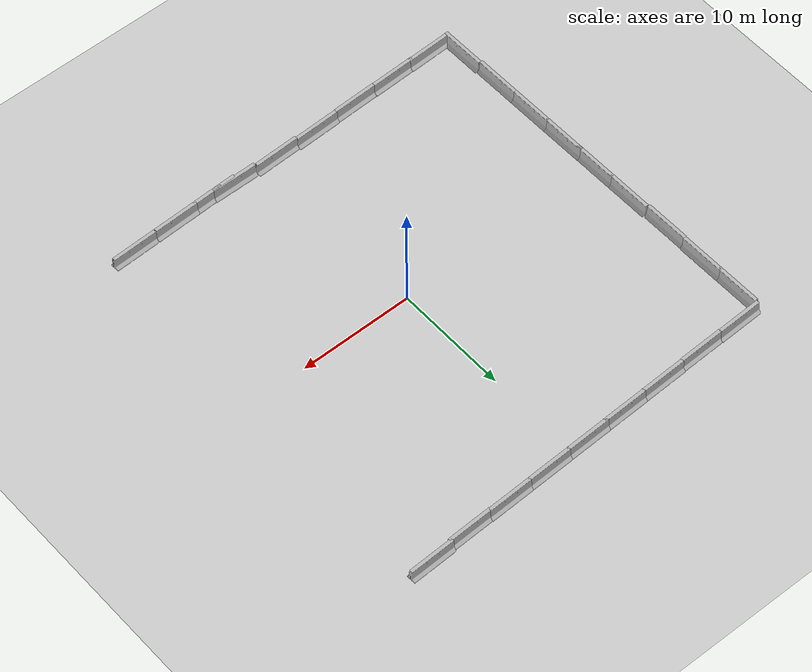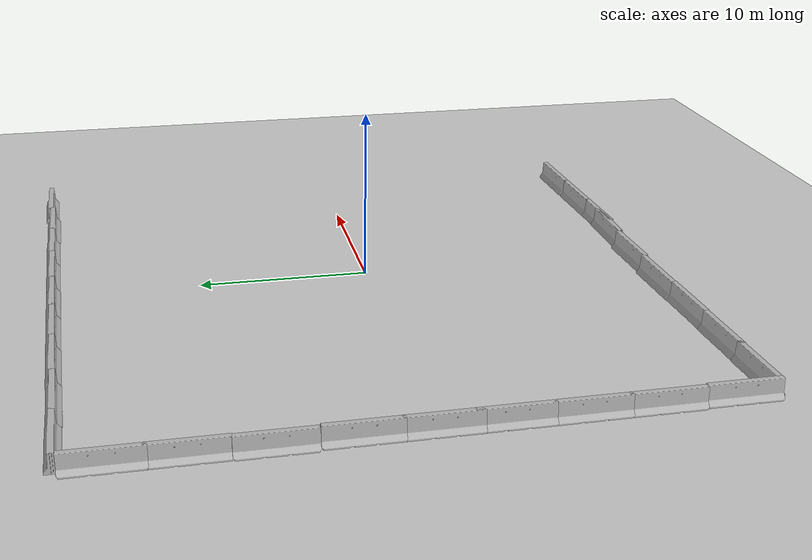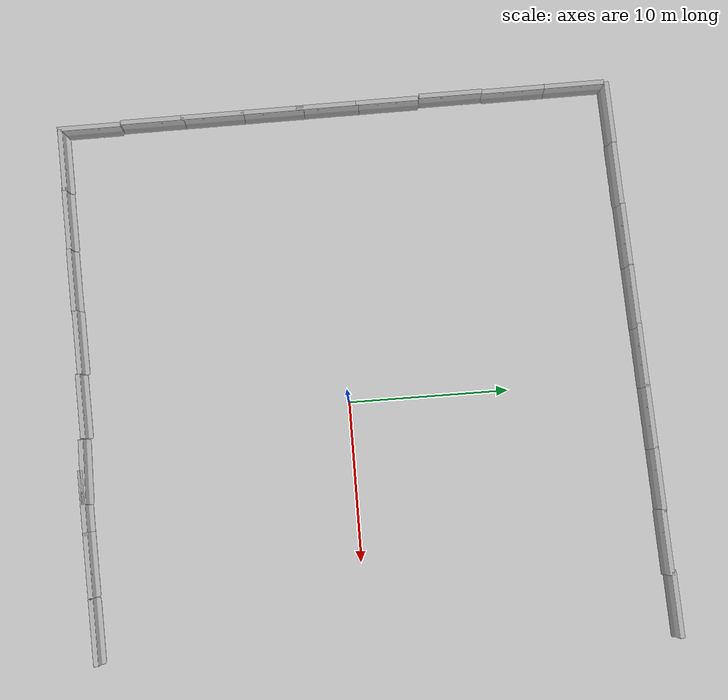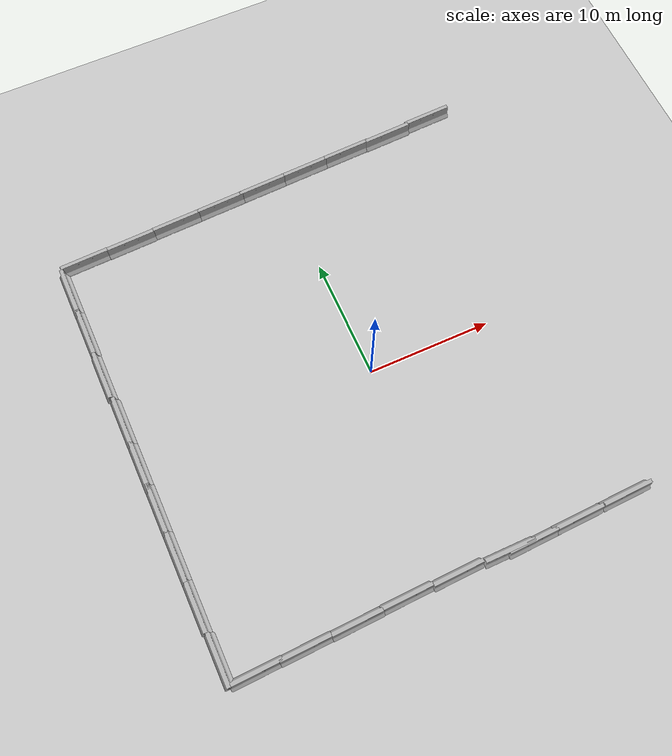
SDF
<sdf version="1.6">
 <world name="default">
  <model name="ground_plane">
   <static>1</static>
   <link name="link">
    <collision name="collision">
     <geometry><plane><normal>0 0 1</normal><size>100 100</size></plane></geometry>
     <surface><friction><ode><mu>100</mu><mu2>50</mu2></ode></friction></surface>
    </collision>
    <visual name="visual">
     <cast_shadows>0</cast_shadows>
     <geometry><plane><normal>0 0 1</normal><size>100 100</size></plane></geometry>
     <material>
      <script><uri>file://media/materials/scripts/gazebo.material</uri><name>Gazebo/Grey</name></script>
     </material>
    </visual>
   </link>
  </model>
  <model name="jersey_barrier">
   <static>1</static>
   <link name="link">
    <visual name="visual">
     <geometry>
      <mesh><uri>model://jersey_barrier/meshes/jersey_barrier.dae</uri><scale>1 1 1</scale></mesh>
     </geometry>
    </visual>
    <collision name="upright">
     <pose>0 0 0.5715 0 -0 0</pose>
     <geometry><box><size>4.06542 0.3063 1.143</size></box></geometry>
    </collision>
    <collision name="base">
     <pose>0 0 0.032258 0 -0 0</pose>
     <geometry><box><size>4.06542 0.8107 0.064516</size></box></geometry>
    </collision>
    <collision name="base2">
     <pose>0 0 0.1 0 -0 0</pose>
     <geometry><box><size>4.06542 0.65 0.1</size></box></geometry>
    </collision>
    <collision name="base3">
     <pose>0 0 0.2 0 -0 0</pose>
     <geometry><box><size>4.06542 0.5 0.1</size></box></geometry>
    </collision>
    <collision name="left-angle">
     <pose>0 -0.224 0.2401 0.9 -0 0</pose>
     <geometry><box><size>4.06542 0.5 0.064516</size></box></geometry>
    </collision>
    <collision name="right-angle">
     <pose>0 0.224 0.2401 -0.9 0 0</pose>
     <geometry><box><size>4.06542 0.5 0.064516</size></box></geometry>
    </collision>
   </link>
   <pose>-0.913416 -16.6952 0 0 -0 0.033275</pose>
  </model>
  <model name="jersey_barrier_clone">
   <static>1</static>
   <link name="link">
    <visual name="visual">
     <geometry>
      <mesh><uri>model://jersey_barrier/meshes/jersey_barrier.dae</uri><scale>1 1 1</scale></mesh>
     </geometry>
    </visual>
    <collision name="upright">
     <pose>0 0 0.5715 0 -0 0</pose>
     <geometry><box><size>4.06542 0.3063 1.143</size></box></geometry>
    </collision>
    <collision name="base">
     <pose>0 0 0.032258 0 -0 0</pose>
     <geometry><box><size>4.06542 0.8107 0.064516</size></box></geometry>
    </collision>
    <collision name="base2">
     <pose>0 0 0.1 0 -0 0</pose>
     <geometry><box><size>4.06542 0.65 0.1</size></box></geometry>
    </collision>
    <collision name="base3">
     <pose>0 0 0.2 0 -0 0</pose>
     <geometry><box><size>4.06542 0.5 0.1</size></box></geometry>
    </collision>
    <collision name="left-angle">
     <pose>0 -0.224 0.2401 0.9 -0 0</pose>
     <geometry><box><size>4.06542 0.5 0.064516</size></box></geometry>
    </collision>
    <collision name="right-angle">
     <pose>0 0.224 0.2401 -0.9 0 0</pose>
     <geometry><box><size>4.06542 0.5 0.064516</size></box></geometry>
    </collision>
   </link>
   <pose>5.06368 -16.8524 0 0 -0 0.033275</pose>
  </model>
  <model name="jersey_barrier_clone_clone">
   <static>1</static>
   <link name="link">
    <visual name="visual">
     <geometry>
      <mesh><uri>model://jersey_barrier/meshes/jersey_barrier.dae</uri><scale>1 1 1</scale></mesh>
     </geometry>
    </visual>
    <collision name="upright">
     <pose>0 0 0.5715 0 -0 0</pose>
     <geometry><box><size>4.06542 0.3063 1.143</size></box></geometry>
    </collision>
    <collision name="base">
     <pose>0 0 0.032258 0 -0 0</pose>
     <geometry><box><size>4.06542 0.8107 0.064516</size></box></geometry>
    </collision>
    <collision name="base2">
     <pose>0 0 0.1 0 -0 0</pose>
     <geometry><box><size>4.06542 0.65 0.1</size></box></geometry>
    </collision>
    <collision name="base3">
     <pose>0 0 0.2 0 -0 0</pose>
     <geometry><box><size>4.06542 0.5 0.1</size></box></geometry>
    </collision>
    <collision name="left-angle">
     <pose>0 -0.224 0.2401 0.9 -0 0</pose>
     <geometry><box><size>4.06542 0.5 0.064516</size></box></geometry>
    </collision>
    <collision name="right-angle">
     <pose>0 0.224 0.2401 -0.9 0 0</pose>
     <geometry><box><size>4.06542 0.5 0.064516</size></box></geometry>
    </collision>
   </link>
   <pose>-4.93978 -16.7019 0 0 -0 0.033275</pose>
  </model>
  <model name="jersey_barrier_clone_clone_0">
   <static>1</static>
   <link name="link">
    <visual name="visual">
     <geometry>
      <mesh><uri>model://jersey_barrier/meshes/jersey_barrier.dae</uri><scale>1 1 1</scale></mesh>
     </geometry>
    </visual>
    <collision name="upright">
     <pose>0 0 0.5715 0 -0 0</pose>
     <geometry><box><size>4.06542 0.3063 1.143</size></box></geometry>
    </collision>
    <collision name="base">
     <pose>0 0 0.032258 0 -0 0</pose>
     <geometry><box><size>4.06542 0.8107 0.064516</size></box></geometry>
    </collision>
    <collision name="base2">
     <pose>0 0 0.1 0 -0 0</pose>
     <geometry><box><size>4.06542 0.65 0.1</size></box></geometry>
    </collision>
    <collision name="base3">
     <pose>0 0 0.2 0 -0 0</pose>
     <geometry><box><size>4.06542 0.5 0.1</size></box></geometry>
    </collision>
    <collision name="left-angle">
     <pose>0 -0.224 0.2401 0.9 -0 0</pose>
     <geometry><box><size>4.06542 0.5 0.064516</size></box></geometry>
    </collision>
    <collision name="right-angle">
     <pose>0 0.224 0.2401 -0.9 0 0</pose>
     <geometry><box><size>4.06542 0.5 0.064516</size></box></geometry>
    </collision>
   </link>
   <pose>8.87687 -16.7227 0 0 -0 0.033275</pose>
  </model>
  <model name="jersey_barrier_clone_clone_1">
   <static>1</static>
   <link name="link">
    <visual name="visual">
     <geometry>
      <mesh><uri>model://jersey_barrier/meshes/jersey_barrier.dae</uri><scale>1 1 1</scale></mesh>
     </geometry>
    </visual>
    <collision name="upright">
     <pose>0 0 0.5715 0 -0 0</pose>
     <geometry><box><size>4.06542 0.3063 1.143</size></box></geometry>
    </collision>
    <collision name="base">
     <pose>0 0 0.032258 0 -0 0</pose>
     <geometry><box><size>4.06542 0.8107 0.064516</size></box></geometry>
    </collision>
    <collision name="base2">
     <pose>0 0 0.1 0 -0 0</pose>
     <geometry><box><size>4.06542 0.65 0.1</size></box></geometry>
    </collision>
    <collision name="base3">
     <pose>0 0 0.2 0 -0 0</pose>
     <geometry><box><size>4.06542 0.5 0.1</size></box></geometry>
    </collision>
    <collision name="left-angle">
     <pose>0 -0.224 0.2401 0.9 -0 0</pose>
     <geometry><box><size>4.06542 0.5 0.064516</size></box></geometry>
    </collision>
    <collision name="right-angle">
     <pose>0 0.224 0.2401 -0.9 0 0</pose>
     <geometry><box><size>4.06542 0.5 0.064516</size></box></geometry>
    </collision>
   </link>
   <pose>12.9707 -16.5908 0 0 -0 0.033275</pose>
  </model>
  <model name="jersey_barrier_clone_clone_clone_0">
   <static>1</static>
   <link name="link">
    <visual name="visual">
     <geometry>
      <mesh><uri>model://jersey_barrier/meshes/jersey_barrier.dae</uri><scale>1 1 1</scale></mesh>
     </geometry>
    </visual>
    <collision name="upright">
     <pose>0 0 0.5715 0 -0 0</pose>
     <geometry><box><size>4.06542 0.3063 1.143</size></box></geometry>
    </collision>
    <collision name="base">
     <pose>0 0 0.032258 0 -0 0</pose>
     <geometry><box><size>4.06542 0.8107 0.064516</size></box></geometry>
    </collision>
    <collision name="base2">
     <pose>0 0 0.1 0 -0 0</pose>
     <geometry><box><size>4.06542 0.65 0.1</size></box></geometry>
    </collision>
    <collision name="base3">
     <pose>0 0 0.2 0 -0 0</pose>
     <geometry><box><size>4.06542 0.5 0.1</size></box></geometry>
    </collision>
    <collision name="left-angle">
     <pose>0 -0.224 0.2401 0.9 -0 0</pose>
     <geometry><box><size>4.06542 0.5 0.064516</size></box></geometry>
    </collision>
    <collision name="right-angle">
     <pose>0 0.224 0.2401 -0.9 0 0</pose>
     <geometry><box><size>4.06542 0.5 0.064516</size></box></geometry>
    </collision>
   </link>
   <pose>-8.88852 -16.868 0 0 -0 0.033275</pose>
  </model>
  <model name="jersey_barrier_clone_clone_clone_2">
   <static>1</static>
   <link name="link">
    <visual name="visual">
     <geometry>
      <mesh><uri>model://jersey_barrier/meshes/jersey_barrier.dae</uri><scale>1 1 1</scale></mesh>
     </geometry>
    </visual>
    <collision name="upright">
     <pose>0 0 0.5715 0 -0 0</pose>
     <geometry><box><size>4.06542 0.3063 1.143</size></box></geometry>
    </collision>
    <collision name="base">
     <pose>0 0 0.032258 0 -0 0</pose>
     <geometry><box><size>4.06542 0.8107 0.064516</size></box></geometry>
    </collision>
    <collision name="base2">
     <pose>0 0 0.1 0 -0 0</pose>
     <geometry><box><size>4.06542 0.65 0.1</size></box></geometry>
    </collision>
    <collision name="base3">
     <pose>0 0 0.2 0 -0 0</pose>
     <geometry><box><size>4.06542 0.5 0.1</size></box></geometry>
    </collision>
    <collision name="left-angle">
     <pose>0 -0.224 0.2401 0.9 -0 0</pose>
     <geometry><box><size>4.06542 0.5 0.064516</size></box></geometry>
    </collision>
    <collision name="right-angle">
     <pose>0 0.224 0.2401 -0.9 0 0</pose>
     <geometry><box><size>4.06542 0.5 0.064516</size></box></geometry>
    </collision>
   </link>
   <pose>-12.8673 -16.9656 0 0 -0 0.033275</pose>
  </model>
  <model name="jersey_barrier_clone_clone_clone_clone_0_clone_0_clone">
   <static>1</static>
   <link name="link">
    <visual name="visual">
     <geometry>
      <mesh><uri>model://jersey_barrier/meshes/jersey_barrier.dae</uri><scale>1 1 1</scale></mesh>
     </geometry>
    </visual>
    <collision name="upright">
     <pose>0 0 0.5715 0 -0 0</pose>
     <geometry><box><size>4.06542 0.3063 1.143</size></box></geometry>
    </collision>
    <collision name="base">
     <pose>0 0 0.032258 0 -0 0</pose>
     <geometry><box><size>4.06542 0.8107 0.064516</size></box></geometry>
    </collision>
    <collision name="base2">
     <pose>0 0 0.1 0 -0 0</pose>
     <geometry><box><size>4.06542 0.65 0.1</size></box></geometry>
    </collision>
    <collision name="base3">
     <pose>0 0 0.2 0 -0 0</pose>
     <geometry><box><size>4.06542 0.5 0.1</size></box></geometry>
    </collision>
    <collision name="left-angle">
     <pose>0 -0.224 0.2401 0.9 -0 0</pose>
     <geometry><box><size>4.06542 0.5 0.064516</size></box></geometry>
    </collision>
    <collision name="right-angle">
     <pose>0 0.224 0.2401 -0.9 0 0</pose>
     <geometry><box><size>4.06542 0.5 0.064516</size></box></geometry>
    </collision>
   </link>
   <pose>13.949 19.1026 0 0 -0 0.033275</pose>
  </model>
  <model name="jersey_barrier_clone_clone_clone_clone_0_clone_0_clone_clone">
   <static>1</static>
   <link name="link">
    <visual name="visual">
     <geometry>
      <mesh><uri>model://jersey_barrier/meshes/jersey_barrier.dae</uri><scale>1 1 1</scale></mesh>
     </geometry>
    </visual>
    <collision name="upright">
     <pose>0 0 0.5715 0 -0 0</pose>
     <geometry><box><size>4.06542 0.3063 1.143</size></box></geometry>
    </collision>
    <collision name="base">
     <pose>0 0 0.032258 0 -0 0</pose>
     <geometry><box><size>4.06542 0.8107 0.064516</size></box></geometry>
    </collision>
    <collision name="base2">
     <pose>0 0 0.1 0 -0 0</pose>
     <geometry><box><size>4.06542 0.65 0.1</size></box></geometry>
    </collision>
    <collision name="base3">
     <pose>0 0 0.2 0 -0 0</pose>
     <geometry><box><size>4.06542 0.5 0.1</size></box></geometry>
    </collision>
    <collision name="left-angle">
     <pose>0 -0.224 0.2401 0.9 -0 0</pose>
     <geometry><box><size>4.06542 0.5 0.064516</size></box></geometry>
    </collision>
    <collision name="right-angle">
     <pose>0 0.224 0.2401 -0.9 0 0</pose>
     <geometry><box><size>4.06542 0.5 0.064516</size></box></geometry>
    </collision>
   </link>
   <pose>10.1358 18.8674 0 0 -0 0.033275</pose>
  </model>
  <model name="jersey_barrier_clone_clone_clone_clone_0_clone_0_clone_clone_0">
   <static>1</static>
   <link name="link">
    <visual name="visual">
     <geometry>
      <mesh><uri>model://jersey_barrier/meshes/jersey_barrier.dae</uri><scale>1 1 1</scale></mesh>
     </geometry>
    </visual>
    <collision name="upright">
     <pose>0 0 0.5715 0 -0 0</pose>
     <geometry><box><size>4.06542 0.3063 1.143</size></box></geometry>
    </collision>
    <collision name="base">
     <pose>0 0 0.032258 0 -0 0</pose>
     <geometry><box><size>4.06542 0.8107 0.064516</size></box></geometry>
    </collision>
    <collision name="base2">
     <pose>0 0 0.1 0 -0 0</pose>
     <geometry><box><size>4.06542 0.65 0.1</size></box></geometry>
    </collision>
    <collision name="base3">
     <pose>0 0 0.2 0 -0 0</pose>
     <geometry><box><size>4.06542 0.5 0.1</size></box></geometry>
    </collision>
    <collision name="left-angle">
     <pose>0 -0.224 0.2401 0.9 -0 0</pose>
     <geometry><box><size>4.06542 0.5 0.064516</size></box></geometry>
    </collision>
    <collision name="right-angle">
     <pose>0 0.224 0.2401 -0.9 0 0</pose>
     <geometry><box><size>4.06542 0.5 0.064516</size></box></geometry>
    </collision>
   </link>
   <pose>6.27406 18.7774 0 0 -0 0.033275</pose>
  </model>
  <model name="jersey_barrier_clone_clone_clone_clone_0_clone_0_clone_clone_1">
   <static>1</static>
   <link name="link">
    <visual name="visual">
     <geometry>
      <mesh><uri>model://jersey_barrier/meshes/jersey_barrier.dae</uri><scale>1 1 1</scale></mesh>
     </geometry>
    </visual>
    <collision name="upright">
     <pose>0 0 0.5715 0 -0 0</pose>
     <geometry><box><size>4.06542 0.3063 1.143</size></box></geometry>
    </collision>
    <collision name="base">
     <pose>0 0 0.032258 0 -0 0</pose>
     <geometry><box><size>4.06542 0.8107 0.064516</size></box></geometry>
    </collision>
    <collision name="base2">
     <pose>0 0 0.1 0 -0 0</pose>
     <geometry><box><size>4.06542 0.65 0.1</size></box></geometry>
    </collision>
    <collision name="base3">
     <pose>0 0 0.2 0 -0 0</pose>
     <geometry><box><size>4.06542 0.5 0.1</size></box></geometry>
    </collision>
    <collision name="left-angle">
     <pose>0 -0.224 0.2401 0.9 -0 0</pose>
     <geometry><box><size>4.06542 0.5 0.064516</size></box></geometry>
    </collision>
    <collision name="right-angle">
     <pose>0 0.224 0.2401 -0.9 0 0</pose>
     <geometry><box><size>4.06542 0.5 0.064516</size></box></geometry>
    </collision>
   </link>
   <pose>2.36253 18.639 0 0 -0 0.033275</pose>
  </model>
  <model name="jersey_barrier_clone_clone_clone_clone_0_clone_0_clone_clone_2">
   <static>1</static>
   <link name="link">
    <visual name="visual">
     <geometry>
      <mesh><uri>model://jersey_barrier/meshes/jersey_barrier.dae</uri><scale>1 1 1</scale></mesh>
     </geometry>
    </visual>
    <collision name="upright">
     <pose>0 0 0.5715 0 -0 0</pose>
     <geometry><box><size>4.06542 0.3063 1.143</size></box></geometry>
    </collision>
    <collision name="base">
     <pose>0 0 0.032258 0 -0 0</pose>
     <geometry><box><size>4.06542 0.8107 0.064516</size></box></geometry>
    </collision>
    <collision name="base2">
     <pose>0 0 0.1 0 -0 0</pose>
     <geometry><box><size>4.06542 0.65 0.1</size></box></geometry>
    </collision>
    <collision name="base3">
     <pose>0 0 0.2 0 -0 0</pose>
     <geometry><box><size>4.06542 0.5 0.1</size></box></geometry>
    </collision>
    <collision name="left-angle">
     <pose>0 -0.224 0.2401 0.9 -0 0</pose>
     <geometry><box><size>4.06542 0.5 0.064516</size></box></geometry>
    </collision>
    <collision name="right-angle">
     <pose>0 0.224 0.2401 -0.9 0 0</pose>
     <geometry><box><size>4.06542 0.5 0.064516</size></box></geometry>
    </collision>
   </link>
   <pose>-1.50152 18.5003 0 0 -0 0.033275</pose>
  </model>
  <model name="jersey_barrier_clone_clone_clone_clone_0_clone_0_clone_clone_3">
   <static>1</static>
   <link name="link">
    <visual name="visual">
     <geometry>
      <mesh><uri>model://jersey_barrier/meshes/jersey_barrier.dae</uri><scale>1 1 1</scale></mesh>
     </geometry>
    </visual>
    <collision name="upright">
     <pose>0 0 0.5715 0 -0 0</pose>
     <geometry><box><size>4.06542 0.3063 1.143</size></box></geometry>
    </collision>
    <collision name="base">
     <pose>0 0 0.032258 0 -0 0</pose>
     <geometry><box><size>4.06542 0.8107 0.064516</size></box></geometry>
    </collision>
    <collision name="base2">
     <pose>0 0 0.1 0 -0 0</pose>
     <geometry><box><size>4.06542 0.65 0.1</size></box></geometry>
    </collision>
    <collision name="base3">
     <pose>0 0 0.2 0 -0 0</pose>
     <geometry><box><size>4.06542 0.5 0.1</size></box></geometry>
    </collision>
    <collision name="left-angle">
     <pose>0 -0.224 0.2401 0.9 -0 0</pose>
     <geometry><box><size>4.06542 0.5 0.064516</size></box></geometry>
    </collision>
    <collision name="right-angle">
     <pose>0 0.224 0.2401 -0.9 0 0</pose>
     <geometry><box><size>4.06542 0.5 0.064516</size></box></geometry>
    </collision>
   </link>
   <pose>-5.27021 18.3618 0 0 -0 0.033275</pose>
  </model>
  <model name="jersey_barrier_clone_clone_clone_clone_0_clone_0_clone_clone_4">
   <static>1</static>
   <link name="link">
    <visual name="visual">
     <geometry>
      <mesh><uri>model://jersey_barrier/meshes/jersey_barrier.dae</uri><scale>1 1 1</scale></mesh>
     </geometry>
    </visual>
    <collision name="upright">
     <pose>0 0 0.5715 0 -0 0</pose>
     <geometry><box><size>4.06542 0.3063 1.143</size></box></geometry>
    </collision>
    <collision name="base">
     <pose>0 0 0.032258 0 -0 0</pose>
     <geometry><box><size>4.06542 0.8107 0.064516</size></box></geometry>
    </collision>
    <collision name="base2">
     <pose>0 0 0.1 0 -0 0</pose>
     <geometry><box><size>4.06542 0.65 0.1</size></box></geometry>
    </collision>
    <collision name="base3">
     <pose>0 0 0.2 0 -0 0</pose>
     <geometry><box><size>4.06542 0.5 0.1</size></box></geometry>
    </collision>
    <collision name="left-angle">
     <pose>0 -0.224 0.2401 0.9 -0 0</pose>
     <geometry><box><size>4.06542 0.5 0.064516</size></box></geometry>
    </collision>
    <collision name="right-angle">
     <pose>0 0.224 0.2401 -0.9 0 0</pose>
     <geometry><box><size>4.06542 0.5 0.064516</size></box></geometry>
    </collision>
   </link>
   <pose>-9.19914 18.219 0 0 -0 0.033275</pose>
  </model>
  <model name="jersey_barrier_clone_clone_clone_clone_0_clone_0_clone_clone_4_clone">
   <static>1</static>
   <link name="link">
    <visual name="visual">
     <geometry>
      <mesh><uri>model://jersey_barrier/meshes/jersey_barrier.dae</uri><scale>1 1 1</scale></mesh>
     </geometry>
    </visual>
    <collision name="upright">
     <pose>0 0 0.5715 0 -0 0</pose>
     <geometry><box><size>4.06542 0.3063 1.143</size></box></geometry>
    </collision>
    <collision name="base">
     <pose>0 0 0.032258 0 -0 0</pose>
     <geometry><box><size>4.06542 0.8107 0.064516</size></box></geometry>
    </collision>
    <collision name="base2">
     <pose>0 0 0.1 0 -0 0</pose>
     <geometry><box><size>4.06542 0.65 0.1</size></box></geometry>
    </collision>
    <collision name="base3">
     <pose>0 0 0.2 0 -0 0</pose>
     <geometry><box><size>4.06542 0.5 0.1</size></box></geometry>
    </collision>
    <collision name="left-angle">
     <pose>0 -0.224 0.2401 0.9 -0 0</pose>
     <geometry><box><size>4.06542 0.5 0.064516</size></box></geometry>
    </collision>
    <collision name="right-angle">
     <pose>0 0.224 0.2401 -0.9 0 0</pose>
     <geometry><box><size>4.06542 0.5 0.064516</size></box></geometry>
    </collision>
   </link>
   <pose>-13.2057 18.0477 0 0 -0 0.033275</pose>
  </model>
  <model name="jersey_barrier_clone_clone_clone_clone_0_clone_0_clone_clone_4_clone_clone">
   <static>1</static>
   <link name="link">
    <visual name="visual">
     <geometry>
      <mesh><uri>model://jersey_barrier/meshes/jersey_barrier.dae</uri><scale>1 1 1</scale></mesh>
     </geometry>
    </visual>
    <collision name="upright">
     <pose>0 0 0.5715 0 -0 0</pose>
     <geometry><box><size>4.06542 0.3063 1.143</size></box></geometry>
    </collision>
    <collision name="base">
     <pose>0 0 0.032258 0 -0 0</pose>
     <geometry><box><size>4.06542 0.8107 0.064516</size></box></geometry>
    </collision>
    <collision name="base2">
     <pose>0 0 0.1 0 -0 0</pose>
     <geometry><box><size>4.06542 0.65 0.1</size></box></geometry>
    </collision>
    <collision name="base3">
     <pose>0 0 0.2 0 -0 0</pose>
     <geometry><box><size>4.06542 0.5 0.1</size></box></geometry>
    </collision>
    <collision name="left-angle">
     <pose>0 -0.224 0.2401 0.9 -0 0</pose>
     <geometry><box><size>4.06542 0.5 0.064516</size></box></geometry>
    </collision>
    <collision name="right-angle">
     <pose>0 0.224 0.2401 -0.9 0 0</pose>
     <geometry><box><size>4.06542 0.5 0.064516</size></box></geometry>
    </collision>
   </link>
   <pose>-17.1438 17.9443 0 0 -0 0.033275</pose>
  </model>
  <model name="jersey_barrier_clone_clone_clone_3_clone_clone_1_clone_0">
   <static>1</static>
   <link name="link">
    <visual name="visual">
     <geometry>
      <mesh><uri>model://jersey_barrier/meshes/jersey_barrier.dae</uri><scale>1 1 1</scale></mesh>
     </geometry>
    </visual>
    <collision name="upright">
     <pose>0 0 0.5715 0 -0 0</pose>
     <geometry><box><size>4.06542 0.3063 1.143</size></box></geometry>
    </collision>
    <collision name="base">
     <pose>0 0 0.032258 0 -0 0</pose>
     <geometry><box><size>4.06542 0.8107 0.064516</size></box></geometry>
    </collision>
    <collision name="base2">
     <pose>0 0 0.1 0 -0 0</pose>
     <geometry><box><size>4.06542 0.65 0.1</size></box></geometry>
    </collision>
    <collision name="base3">
     <pose>0 0 0.2 0 -0 0</pose>
     <geometry><box><size>4.06542 0.5 0.1</size></box></geometry>
    </collision>
    <collision name="left-angle">
     <pose>0 -0.224 0.2401 0.9 -0 0</pose>
     <geometry><box><size>4.06542 0.5 0.064516</size></box></geometry>
    </collision>
    <collision name="right-angle">
     <pose>0 0.224 0.2401 -0.9 0 0</pose>
     <geometry><box><size>4.06542 0.5 0.064516</size></box></geometry>
    </collision>
   </link>
   <pose>-19.1448 15.6922 0 0 0 -1.5622</pose>
  </model>
  <model name="jersey_barrier_clone_clone_clone_3_clone_clone_1_clone_0_clone">
   <static>1</static>
   <link name="link">
    <visual name="visual">
     <geometry>
      <mesh><uri>model://jersey_barrier/meshes/jersey_barrier.dae</uri><scale>1 1 1</scale></mesh>
     </geometry>
    </visual>
    <collision name="upright">
     <pose>0 0 0.5715 0 -0 0</pose>
     <geometry><box><size>4.06542 0.3063 1.143</size></box></geometry>
    </collision>
    <collision name="base">
     <pose>0 0 0.032258 0 -0 0</pose>
     <geometry><box><size>4.06542 0.8107 0.064516</size></box></geometry>
    </collision>
    <collision name="base2">
     <pose>0 0 0.1 0 -0 0</pose>
     <geometry><box><size>4.06542 0.65 0.1</size></box></geometry>
    </collision>
    <collision name="base3">
     <pose>0 0 0.2 0 -0 0</pose>
     <geometry><box><size>4.06542 0.5 0.1</size></box></geometry>
    </collision>
    <collision name="left-angle">
     <pose>0 -0.224 0.2401 0.9 -0 0</pose>
     <geometry><box><size>4.06542 0.5 0.064516</size></box></geometry>
    </collision>
    <collision name="right-angle">
     <pose>0 0.224 0.2401 -0.9 0 0</pose>
     <geometry><box><size>4.06542 0.5 0.064516</size></box></geometry>
    </collision>
   </link>
   <pose>-19.1056 11.8976 0 0 0 -1.5622</pose>
  </model>
  <model name="jersey_barrier_clone_clone_clone_3_clone_clone_1_clone_0_clone_0">
   <static>1</static>
   <link name="link">
    <visual name="visual">
     <geometry>
      <mesh><uri>model://jersey_barrier/meshes/jersey_barrier.dae</uri><scale>1 1 1</scale></mesh>
     </geometry>
    </visual>
    <collision name="upright">
     <pose>0 0 0.5715 0 -0 0</pose>
     <geometry><box><size>4.06542 0.3063 1.143</size></box></geometry>
    </collision>
    <collision name="base">
     <pose>0 0 0.032258 0 -0 0</pose>
     <geometry><box><size>4.06542 0.8107 0.064516</size></box></geometry>
    </collision>
    <collision name="base2">
     <pose>0 0 0.1 0 -0 0</pose>
     <geometry><box><size>4.06542 0.65 0.1</size></box></geometry>
    </collision>
    <collision name="base3">
     <pose>0 0 0.2 0 -0 0</pose>
     <geometry><box><size>4.06542 0.5 0.1</size></box></geometry>
    </collision>
    <collision name="left-angle">
     <pose>0 -0.224 0.2401 0.9 -0 0</pose>
     <geometry><box><size>4.06542 0.5 0.064516</size></box></geometry>
    </collision>
    <collision name="right-angle">
     <pose>0 0.224 0.2401 -0.9 0 0</pose>
     <geometry><box><size>4.06542 0.5 0.064516</size></box></geometry>
    </collision>
   </link>
   <pose>-19.118 7.89262 0 0 0 -1.5622</pose>
  </model>
  <model name="jersey_barrier_clone_clone_clone_3_clone_clone_1_clone_0_clone_1">
   <static>1</static>
   <link name="link">
    <visual name="visual">
     <geometry>
      <mesh><uri>model://jersey_barrier/meshes/jersey_barrier.dae</uri><scale>1 1 1</scale></mesh>
     </geometry>
    </visual>
    <collision name="upright">
     <pose>0 0 0.5715 0 -0 0</pose>
     <geometry><box><size>4.06542 0.3063 1.143</size></box></geometry>
    </collision>
    <collision name="base">
     <pose>0 0 0.032258 0 -0 0</pose>
     <geometry><box><size>4.06542 0.8107 0.064516</size></box></geometry>
    </collision>
    <collision name="base2">
     <pose>0 0 0.1 0 -0 0</pose>
     <geometry><box><size>4.06542 0.65 0.1</size></box></geometry>
    </collision>
    <collision name="base3">
     <pose>0 0 0.2 0 -0 0</pose>
     <geometry><box><size>4.06542 0.5 0.1</size></box></geometry>
    </collision>
    <collision name="left-angle">
     <pose>0 -0.224 0.2401 0.9 -0 0</pose>
     <geometry><box><size>4.06542 0.5 0.064516</size></box></geometry>
    </collision>
    <collision name="right-angle">
     <pose>0 0.224 0.2401 -0.9 0 0</pose>
     <geometry><box><size>4.06542 0.5 0.064516</size></box></geometry>
    </collision>
   </link>
   <pose>-18.9683 3.80804 0 0 0 -1.5622</pose>
  </model>
  <model name="jersey_barrier_clone_clone_clone_3_clone_clone_1_clone_0_clone_2">
   <static>1</static>
   <link name="link">
    <visual name="visual">
     <geometry>
      <mesh><uri>model://jersey_barrier/meshes/jersey_barrier.dae</uri><scale>1 1 1</scale></mesh>
     </geometry>
    </visual>
    <collision name="upright">
     <pose>0 0 0.5715 0 -0 0</pose>
     <geometry><box><size>4.06542 0.3063 1.143</size></box></geometry>
    </collision>
    <collision name="base">
     <pose>0 0 0.032258 0 -0 0</pose>
     <geometry><box><size>4.06542 0.8107 0.064516</size></box></geometry>
    </collision>
    <collision name="base2">
     <pose>0 0 0.1 0 -0 0</pose>
     <geometry><box><size>4.06542 0.65 0.1</size></box></geometry>
    </collision>
    <collision name="base3">
     <pose>0 0 0.2 0 -0 0</pose>
     <geometry><box><size>4.06542 0.5 0.1</size></box></geometry>
    </collision>
    <collision name="left-angle">
     <pose>0 -0.224 0.2401 0.9 -0 0</pose>
     <geometry><box><size>4.06542 0.5 0.064516</size></box></geometry>
    </collision>
    <collision name="right-angle">
     <pose>0 0.224 0.2401 -0.9 0 0</pose>
     <geometry><box><size>4.06542 0.5 0.064516</size></box></geometry>
    </collision>
   </link>
   <pose>-18.9314 -0.026238 0 0 0 -1.5622</pose>
  </model>
  <model name="jersey_barrier_clone_clone_clone_3_clone_clone_1_clone_0_clone_3">
   <static>1</static>
   <link name="link">
    <visual name="visual">
     <geometry>
      <mesh><uri>model://jersey_barrier/meshes/jersey_barrier.dae</uri><scale>1 1 1</scale></mesh>
     </geometry>
    </visual>
    <collision name="upright">
     <pose>0 0 0.5715 0 -0 0</pose>
     <geometry><box><size>4.06542 0.3063 1.143</size></box></geometry>
    </collision>
    <collision name="base">
     <pose>0 0 0.032258 0 -0 0</pose>
     <geometry><box><size>4.06542 0.8107 0.064516</size></box></geometry>
    </collision>
    <collision name="base2">
     <pose>0 0 0.1 0 -0 0</pose>
     <geometry><box><size>4.06542 0.65 0.1</size></box></geometry>
    </collision>
    <collision name="base3">
     <pose>0 0 0.2 0 -0 0</pose>
     <geometry><box><size>4.06542 0.5 0.1</size></box></geometry>
    </collision>
    <collision name="left-angle">
     <pose>0 -0.224 0.2401 0.9 -0 0</pose>
     <geometry><box><size>4.06542 0.5 0.064516</size></box></geometry>
    </collision>
    <collision name="right-angle">
     <pose>0 0.224 0.2401 -0.9 0 0</pose>
     <geometry><box><size>4.06542 0.5 0.064516</size></box></geometry>
    </collision>
   </link>
   <pose>-18.8885 -3.54912 0 0 0 -1.5622</pose>
  </model>
  <model name="jersey_barrier_clone_clone_clone_3_clone_clone_1_clone_0_clone_4">
   <static>1</static>
   <link name="link">
    <visual name="visual">
     <geometry>
      <mesh><uri>model://jersey_barrier/meshes/jersey_barrier.dae</uri><scale>1 1 1</scale></mesh>
     </geometry>
    </visual>
    <collision name="upright">
     <pose>0 0 0.5715 0 -0 0</pose>
     <geometry><box><size>4.06542 0.3063 1.143</size></box></geometry>
    </collision>
    <collision name="base">
     <pose>0 0 0.032258 0 -0 0</pose>
     <geometry><box><size>4.06542 0.8107 0.064516</size></box></geometry>
    </collision>
    <collision name="base2">
     <pose>0 0 0.1 0 -0 0</pose>
     <geometry><box><size>4.06542 0.65 0.1</size></box></geometry>
    </collision>
    <collision name="base3">
     <pose>0 0 0.2 0 -0 0</pose>
     <geometry><box><size>4.06542 0.5 0.1</size></box></geometry>
    </collision>
    <collision name="left-angle">
     <pose>0 -0.224 0.2401 0.9 -0 0</pose>
     <geometry><box><size>4.06542 0.5 0.064516</size></box></geometry>
    </collision>
    <collision name="right-angle">
     <pose>0 0.224 0.2401 -0.9 0 0</pose>
     <geometry><box><size>4.06542 0.5 0.064516</size></box></geometry>
    </collision>
   </link>
   <pose>-18.8515 -7.38298 0 0 0 -1.5622</pose>
  </model>
  <model name="jersey_barrier_clone_clone_clone_3_clone_clone_1_clone_0_clone_5">
   <static>1</static>
   <link name="link">
    <visual name="visual">
     <geometry>
      <mesh><uri>model://jersey_barrier/meshes/jersey_barrier.dae</uri><scale>1 1 1</scale></mesh>
     </geometry>
    </visual>
    <collision name="upright">
     <pose>0 0 0.5715 0 -0 0</pose>
     <geometry><box><size>4.06542 0.3063 1.143</size></box></geometry>
    </collision>
    <collision name="base">
     <pose>0 0 0.032258 0 -0 0</pose>
     <geometry><box><size>4.06542 0.8107 0.064516</size></box></geometry>
    </collision>
    <collision name="base2">
     <pose>0 0 0.1 0 -0 0</pose>
     <geometry><box><size>4.06542 0.65 0.1</size></box></geometry>
    </collision>
    <collision name="base3">
     <pose>0 0 0.2 0 -0 0</pose>
     <geometry><box><size>4.06542 0.5 0.1</size></box></geometry>
    </collision>
    <collision name="left-angle">
     <pose>0 -0.224 0.2401 0.9 -0 0</pose>
     <geometry><box><size>4.06542 0.5 0.064516</size></box></geometry>
    </collision>
    <collision name="right-angle">
     <pose>0 0.224 0.2401 -0.9 0 0</pose>
     <geometry><box><size>4.06542 0.5 0.064516</size></box></geometry>
    </collision>
   </link>
   <pose>-18.8143 -11.2174 0 0 0 -1.5622</pose>
  </model>
  <model name="jersey_barrier_clone_clone_clone_3_clone_clone_1_clone_0_clone_6">
   <static>1</static>
   <link name="link">
    <visual name="visual">
     <geometry>
      <mesh><uri>model://jersey_barrier/meshes/jersey_barrier.dae</uri><scale>1 1 1</scale></mesh>
     </geometry>
    </visual>
    <collision name="upright">
     <pose>0 0 0.5715 0 -0 0</pose>
     <geometry><box><size>4.06542 0.3063 1.143</size></box></geometry>
    </collision>
    <collision name="base">
     <pose>0 0 0.032258 0 -0 0</pose>
     <geometry><box><size>4.06542 0.8107 0.064516</size></box></geometry>
    </collision>
    <collision name="base2">
     <pose>0 0 0.1 0 -0 0</pose>
     <geometry><box><size>4.06542 0.65 0.1</size></box></geometry>
    </collision>
    <collision name="base3">
     <pose>0 0 0.2 0 -0 0</pose>
     <geometry><box><size>4.06542 0.5 0.1</size></box></geometry>
    </collision>
    <collision name="left-angle">
     <pose>0 -0.224 0.2401 0.9 -0 0</pose>
     <geometry><box><size>4.06542 0.5 0.064516</size></box></geometry>
    </collision>
    <collision name="right-angle">
     <pose>0 0.224 0.2401 -0.9 0 0</pose>
     <geometry><box><size>4.06542 0.5 0.064516</size></box></geometry>
    </collision>
   </link>
   <pose>-18.6779 -15.2602 0 0 0 -1.5622</pose>
  </model>
  <model name="jersey_barrier_clone_clone_clone_2_clone">
   <static>1</static>
   <link name="link">
    <visual name="visual">
     <geometry>
      <mesh><uri>model://jersey_barrier/meshes/jersey_barrier.dae</uri><scale>1 1 1</scale></mesh>
     </geometry>
    </visual>
    <collision name="upright">
     <pose>0 0 0.5715 0 -0 0</pose>
     <geometry><box><size>4.06542 0.3063 1.143</size></box></geometry>
    </collision>
    <collision name="base">
     <pose>0 0 0.032258 0 -0 0</pose>
     <geometry><box><size>4.06542 0.8107 0.064516</size></box></geometry>
    </collision>
    <collision name="base2">
     <pose>0 0 0.1 0 -0 0</pose>
     <geometry><box><size>4.06542 0.65 0.1</size></box></geometry>
    </collision>
    <collision name="base3">
     <pose>0 0 0.2 0 -0 0</pose>
     <geometry><box><size>4.06542 0.5 0.1</size></box></geometry>
    </collision>
    <collision name="left-angle">
     <pose>0 -0.224 0.2401 0.9 -0 0</pose>
     <geometry><box><size>4.06542 0.5 0.064516</size></box></geometry>
    </collision>
    <collision name="right-angle">
     <pose>0 0.224 0.2401 -0.9 0 0</pose>
     <geometry><box><size>4.06542 0.5 0.064516</size></box></geometry>
    </collision>
   </link>
   <pose>-16.6367 -17.055 0 0 -0 0.033275</pose>
  </model>
  <model name="jersey_barrier_clone_0">
   <static>1</static>
   <link name="link">
    <visual name="visual">
     <geometry>
      <mesh><uri>model://jersey_barrier/meshes/jersey_barrier.dae</uri><scale>1 1 1</scale></mesh>
     </geometry>
    </visual>
    <collision name="upright">
     <pose>0 0 0.5715 0 -0 0</pose>
     <geometry><box><size>4.06542 0.3063 1.143</size></box></geometry>
    </collision>
    <collision name="base">
     <pose>0 0 0.032258 0 -0 0</pose>
     <geometry><box><size>4.06542 0.8107 0.064516</size></box></geometry>
    </collision>
    <collision name="base2">
     <pose>0 0 0.1 0 -0 0</pose>
     <geometry><box><size>4.06542 0.65 0.1</size></box></geometry>
    </collision>
    <collision name="base3">
     <pose>0 0 0.2 0 -0 0</pose>
     <geometry><box><size>4.06542 0.5 0.1</size></box></geometry>
    </collision>
    <collision name="left-angle">
     <pose>0 -0.224 0.2401 0.9 -0 0</pose>
     <geometry><box><size>4.06542 0.5 0.064516</size></box></geometry>
    </collision>
    <collision name="right-angle">
     <pose>0 0.224 0.2401 -0.9 0 0</pose>
     <geometry><box><size>4.06542 0.5 0.064516</size></box></geometry>
    </collision>
   </link>
   <pose>3.17006 -16.7915 0 0 0 -0.002345</pose>
  </model>
 </world>
</sdf>
